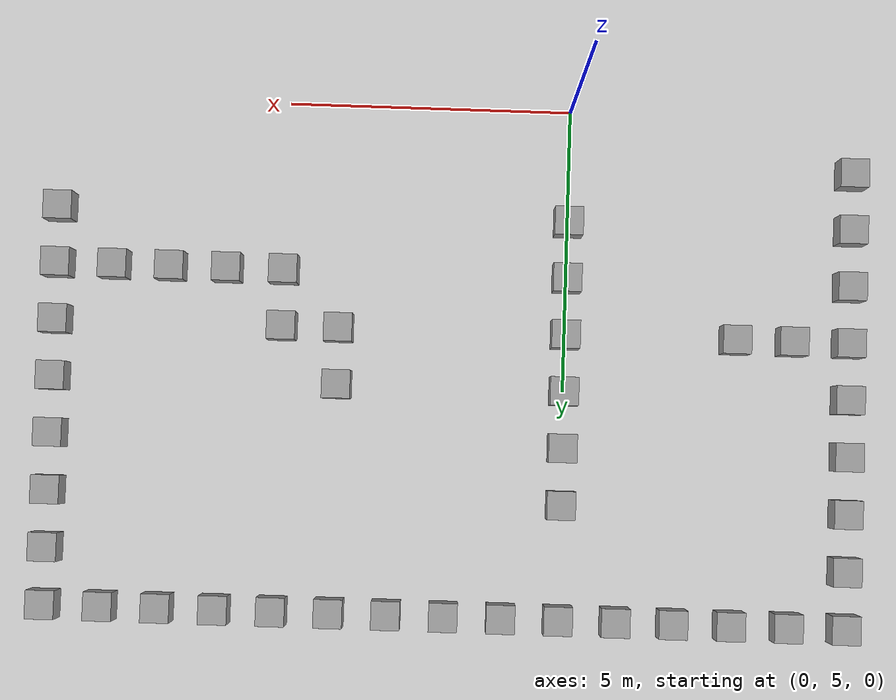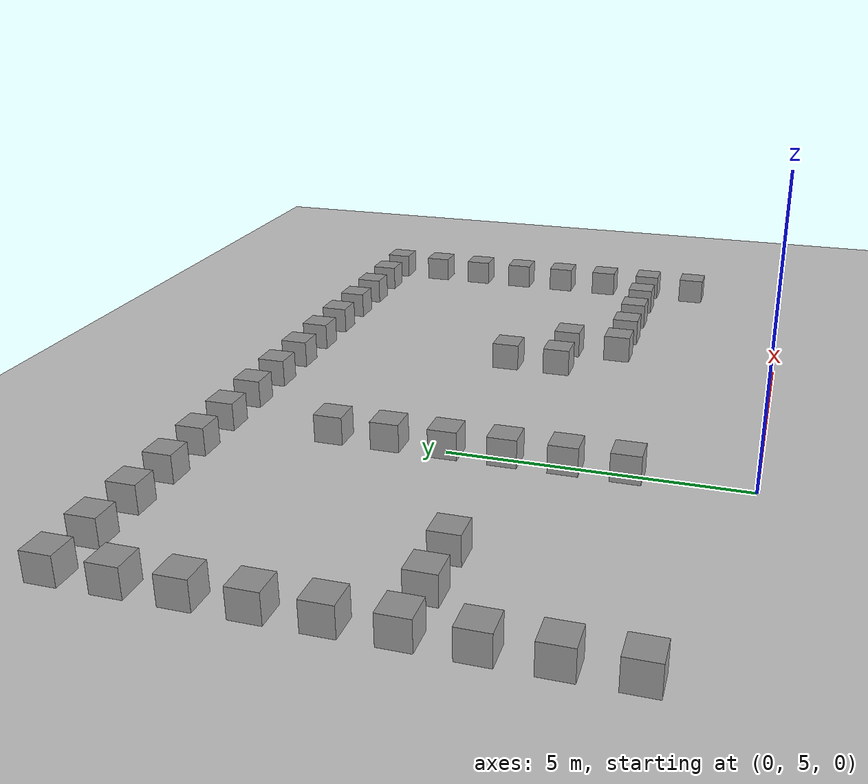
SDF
<sdf version="1.4">
 <world name="default">
  <model name="ground_plane">
   <static>1</static>
   <link name="link">
    <collision name="collision">
     <geometry><plane><normal>0 0 1</normal><size>100 100</size></plane></geometry>
     <surface><friction><ode><mu>100</mu><mu2>50</mu2></ode></friction></surface>
    </collision>
    <visual name="visual">
     <cast_shadows>0</cast_shadows>
     <geometry><plane><normal>0 0 1</normal><size>100 100</size></plane></geometry>
     <material>
      <script><uri>file://media/materials/scripts/gazebo.material</uri><name>Gazebo/Grey</name></script>
     </material>
    </visual>
    <velocity_decay><linear>0</linear><angular>0</angular></velocity_decay>
   </link>
  </model>
  <model name="unit_box_38">
   <pose>9 7 0.25 0 -0 0</pose>
   <static>true</static>
   <link name="link">
    <inertial>
     <mass>1</mass>
     <inertia><ixx>1</ixx><ixy>0</ixy><ixz>0</ixz><iyy>1</iyy><iyz>0</iyz><izz>1</izz></inertia>
    </inertial>
    <collision name="collision"><geometry><box><size>0.5 0.5 0.5</size></box></geometry></collision>
    <visual name="visual">
     <geometry><box><size>0.5 0.5 0.5</size></box></geometry>
     <material>
      <script><uri>file://media/materials/scripts/gazebo.material</uri><name>Gazebo/Grey</name></script>
     </material>
    </visual>
    <velocity_decay><linear>0</linear><angular>0</angular></velocity_decay>
   </link>
   <static>0</static>
  </model>
  <model name="unit_box_39">
   <pose>9 8 0.25 0 -0 0</pose>
   <static>true</static>
   <link name="link">
    <inertial>
     <mass>1</mass>
     <inertia><ixx>1</ixx><ixy>0</ixy><ixz>0</ixz><iyy>1</iyy><iyz>0</iyz><izz>1</izz></inertia>
    </inertial>
    <collision name="collision"><geometry><box><size>0.5 0.5 0.5</size></box></geometry></collision>
    <visual name="visual">
     <geometry><box><size>0.5 0.5 0.5</size></box></geometry>
     <material>
      <script><uri>file://media/materials/scripts/gazebo.material</uri><name>Gazebo/Grey</name></script>
     </material>
    </visual>
    <velocity_decay><linear>0</linear><angular>0</angular></velocity_decay>
   </link>
   <static>0</static>
  </model>
  <model name="unit_box_51">
   <pose>8 8 0.25 0 -0 0</pose>
   <static>true</static>
   <link name="link">
    <inertial>
     <mass>1</mass>
     <inertia><ixx>1</ixx><ixy>0</ixy><ixz>0</ixz><iyy>1</iyy><iyz>0</iyz><izz>1</izz></inertia>
    </inertial>
    <collision name="collision"><geometry><box><size>0.5 0.5 0.5</size></box></geometry></collision>
    <visual name="visual">
     <geometry><box><size>0.5 0.5 0.5</size></box></geometry>
     <material>
      <script><uri>file://media/materials/scripts/gazebo.material</uri><name>Gazebo/Grey</name></script>
     </material>
    </visual>
    <velocity_decay><linear>0</linear><angular>0</angular></velocity_decay>
   </link>
   <static>0</static>
  </model>
  <model name="unit_box_52">
   <pose>7 8 0.25 0 -0 0</pose>
   <static>true</static>
   <link name="link">
    <inertial>
     <mass>1</mass>
     <inertia><ixx>1</ixx><ixy>0</ixy><ixz>0</ixz><iyy>1</iyy><iyz>0</iyz><izz>1</izz></inertia>
    </inertial>
    <collision name="collision"><geometry><box><size>0.5 0.5 0.5</size></box></geometry></collision>
    <visual name="visual">
     <geometry><box><size>0.5 0.5 0.5</size></box></geometry>
     <material>
      <script><uri>file://media/materials/scripts/gazebo.material</uri><name>Gazebo/Grey</name></script>
     </material>
    </visual>
    <velocity_decay><linear>0</linear><angular>0</angular></velocity_decay>
   </link>
   <static>0</static>
  </model>
  <model name="unit_box_53">
   <pose>6 8 0.25 0 -0 0</pose>
   <static>true</static>
   <link name="link">
    <inertial>
     <mass>1</mass>
     <inertia><ixx>1</ixx><ixy>0</ixy><ixz>0</ixz><iyy>1</iyy><iyz>0</iyz><izz>1</izz></inertia>
    </inertial>
    <collision name="collision"><geometry><box><size>0.5 0.5 0.5</size></box></geometry></collision>
    <visual name="visual">
     <geometry><box><size>0.5 0.5 0.5</size></box></geometry>
     <material>
      <script><uri>file://media/materials/scripts/gazebo.material</uri><name>Gazebo/Grey</name></script>
     </material>
    </visual>
    <velocity_decay><linear>0</linear><angular>0</angular></velocity_decay>
   </link>
   <static>0</static>
  </model>
  <model name="unit_box_54">
   <pose>5 8 0.25 0 -0 0</pose>
   <static>true</static>
   <link name="link">
    <inertial>
     <mass>1</mass>
     <inertia><ixx>1</ixx><ixy>0</ixy><ixz>0</ixz><iyy>1</iyy><iyz>0</iyz><izz>1</izz></inertia>
    </inertial>
    <collision name="collision"><geometry><box><size>0.5 0.5 0.5</size></box></geometry></collision>
    <visual name="visual">
     <geometry><box><size>0.5 0.5 0.5</size></box></geometry>
     <material>
      <script><uri>file://media/materials/scripts/gazebo.material</uri><name>Gazebo/Grey</name></script>
     </material>
    </visual>
    <velocity_decay><linear>0</linear><angular>0</angular></velocity_decay>
   </link>
   <static>0</static>
  </model>
  <model name="unit_box_55">
   <pose>9 9 0.25 0 -0 0</pose>
   <static>true</static>
   <link name="link">
    <inertial>
     <mass>1</mass>
     <inertia><ixx>1</ixx><ixy>0</ixy><ixz>0</ixz><iyy>1</iyy><iyz>0</iyz><izz>1</izz></inertia>
    </inertial>
    <collision name="collision"><geometry><box><size>0.5 0.5 0.5</size></box></geometry></collision>
    <visual name="visual">
     <geometry><box><size>0.5 0.5 0.5</size></box></geometry>
     <material>
      <script><uri>file://media/materials/scripts/gazebo.material</uri><name>Gazebo/Grey</name></script>
     </material>
    </visual>
    <velocity_decay><linear>0</linear><angular>0</angular></velocity_decay>
   </link>
   <static>0</static>
  </model>
  <model name="unit_box_56">
   <pose>9 10 0.25 0 -0 0</pose>
   <static>true</static>
   <link name="link">
    <inertial>
     <mass>1</mass>
     <inertia><ixx>1</ixx><ixy>0</ixy><ixz>0</ixz><iyy>1</iyy><iyz>0</iyz><izz>1</izz></inertia>
    </inertial>
    <collision name="collision"><geometry><box><size>0.5 0.5 0.5</size></box></geometry></collision>
    <visual name="visual">
     <geometry><box><size>0.5 0.5 0.5</size></box></geometry>
     <material>
      <script><uri>file://media/materials/scripts/gazebo.material</uri><name>Gazebo/Grey</name></script>
     </material>
    </visual>
    <velocity_decay><linear>0</linear><angular>0</angular></velocity_decay>
   </link>
   <static>0</static>
  </model>
  <model name="unit_box__1">
   <pose>9 11 0.25 0 -0 0</pose>
   <static>true</static>
   <link name="link">
    <inertial>
     <mass>1</mass>
     <inertia><ixx>1</ixx><ixy>0</ixy><ixz>0</ixz><iyy>1</iyy><iyz>0</iyz><izz>1</izz></inertia>
    </inertial>
    <collision name="collision"><geometry><box><size>0.5 0.5 0.5</size></box></geometry></collision>
    <visual name="visual">
     <geometry><box><size>0.5 0.5 0.5</size></box></geometry>
     <material>
      <script><uri>file://media/materials/scripts/gazebo.material</uri><name>Gazebo/Grey</name></script>
     </material>
    </visual>
    <velocity_decay><linear>0</linear><angular>0</angular></velocity_decay>
   </link>
   <static>0</static>
  </model>
  <model name="unit_box__2">
   <pose>9 12 0.25 0 -0 0</pose>
   <static>true</static>
   <link name="link">
    <inertial>
     <mass>1</mass>
     <inertia><ixx>1</ixx><ixy>0</ixy><ixz>0</ixz><iyy>1</iyy><iyz>0</iyz><izz>1</izz></inertia>
    </inertial>
    <collision name="collision"><geometry><box><size>0.5 0.5 0.5</size></box></geometry></collision>
    <visual name="visual">
     <geometry><box><size>0.5 0.5 0.5</size></box></geometry>
     <material>
      <script><uri>file://media/materials/scripts/gazebo.material</uri><name>Gazebo/Grey</name></script>
     </material>
    </visual>
    <velocity_decay><linear>0</linear><angular>0</angular></velocity_decay>
   </link>
   <static>0</static>
  </model>
  <model name="unit_box__3">
   <pose>9 13 0.25 0 -0 0</pose>
   <static>true</static>
   <link name="link">
    <inertial>
     <mass>1</mass>
     <inertia><ixx>1</ixx><ixy>0</ixy><ixz>0</ixz><iyy>1</iyy><iyz>0</iyz><izz>1</izz></inertia>
    </inertial>
    <collision name="collision"><geometry><box><size>0.5 0.5 0.5</size></box></geometry></collision>
    <visual name="visual">
     <geometry><box><size>0.5 0.5 0.5</size></box></geometry>
     <material>
      <script><uri>file://media/materials/scripts/gazebo.material</uri><name>Gazebo/Grey</name></script>
     </material>
    </visual>
    <velocity_decay><linear>0</linear><angular>0</angular></velocity_decay>
   </link>
   <static>0</static>
  </model>
  <model name="unit_box_58">
   <pose>0 7 0.25 0 -0 0</pose>
   <static>true</static>
   <link name="link">
    <inertial>
     <mass>1</mass>
     <inertia><ixx>1</ixx><ixy>0</ixy><ixz>0</ixz><iyy>1</iyy><iyz>0</iyz><izz>1</izz></inertia>
    </inertial>
    <collision name="collision"><geometry><box><size>0.5 0.5 0.5</size></box></geometry></collision>
    <visual name="visual">
     <geometry><box><size>0.5 0.5 0.5</size></box></geometry>
     <material>
      <script><uri>file://media/materials/scripts/gazebo.material</uri><name>Gazebo/Grey</name></script>
     </material>
    </visual>
    <velocity_decay><linear>0</linear><angular>0</angular></velocity_decay>
   </link>
   <static>0</static>
  </model>
  <model name="unit_box_59">
   <pose>0 8 0.25 0 -0 0</pose>
   <static>true</static>
   <link name="link">
    <inertial>
     <mass>1</mass>
     <inertia><ixx>1</ixx><ixy>0</ixy><ixz>0</ixz><iyy>1</iyy><iyz>0</iyz><izz>1</izz></inertia>
    </inertial>
    <collision name="collision"><geometry><box><size>0.5 0.5 0.5</size></box></geometry></collision>
    <visual name="visual">
     <geometry><box><size>0.5 0.5 0.5</size></box></geometry>
     <material>
      <script><uri>file://media/materials/scripts/gazebo.material</uri><name>Gazebo/Grey</name></script>
     </material>
    </visual>
    <velocity_decay><linear>0</linear><angular>0</angular></velocity_decay>
   </link>
   <static>0</static>
  </model>
  <model name="unit_box_60">
   <pose>0 9 0.25 0 -0 0</pose>
   <static>true</static>
   <link name="link">
    <inertial>
     <mass>1</mass>
     <inertia><ixx>1</ixx><ixy>0</ixy><ixz>0</ixz><iyy>1</iyy><iyz>0</iyz><izz>1</izz></inertia>
    </inertial>
    <collision name="collision"><geometry><box><size>0.5 0.5 0.5</size></box></geometry></collision>
    <visual name="visual">
     <geometry><box><size>0.5 0.5 0.5</size></box></geometry>
     <material>
      <script><uri>file://media/materials/scripts/gazebo.material</uri><name>Gazebo/Grey</name></script>
     </material>
    </visual>
    <velocity_decay><linear>0</linear><angular>0</angular></velocity_decay>
   </link>
   <static>0</static>
  </model>
  <model name="unit_box_61">
   <pose>-5 6 0.25 0 -0 0</pose>
   <static>true</static>
   <link name="link">
    <inertial>
     <mass>1</mass>
     <inertia><ixx>1</ixx><ixy>0</ixy><ixz>0</ixz><iyy>1</iyy><iyz>0</iyz><izz>1</izz></inertia>
    </inertial>
    <collision name="collision"><geometry><box><size>0.5 0.5 0.5</size></box></geometry></collision>
    <visual name="visual">
     <geometry><box><size>0.5 0.5 0.5</size></box></geometry>
     <material>
      <script><uri>file://media/materials/scripts/gazebo.material</uri><name>Gazebo/Grey</name></script>
     </material>
    </visual>
    <velocity_decay><linear>0</linear><angular>0</angular></velocity_decay>
   </link>
   <static>0</static>
  </model>
  <model name="unit_box_62">
   <pose>0 10 0.25 0 -0 0</pose>
   <static>true</static>
   <link name="link">
    <inertial>
     <mass>1</mass>
     <inertia><ixx>1</ixx><ixy>0</ixy><ixz>0</ixz><iyy>1</iyy><iyz>0</iyz><izz>1</izz></inertia>
    </inertial>
    <collision name="collision"><geometry><box><size>0.5 0.5 0.5</size></box></geometry></collision>
    <visual name="visual">
     <geometry><box><size>0.5 0.5 0.5</size></box></geometry>
     <material>
      <script><uri>file://media/materials/scripts/gazebo.material</uri><name>Gazebo/Grey</name></script>
     </material>
    </visual>
    <velocity_decay><linear>0</linear><angular>0</angular></velocity_decay>
   </link>
   <static>0</static>
  </model>
  <model name="unit_box_63">
   <pose>0 11 0.25 0 -0 0</pose>
   <static>true</static>
   <link name="link">
    <inertial>
     <mass>1</mass>
     <inertia><ixx>1</ixx><ixy>0</ixy><ixz>0</ixz><iyy>1</iyy><iyz>0</iyz><izz>1</izz></inertia>
    </inertial>
    <collision name="collision"><geometry><box><size>0.5 0.5 0.5</size></box></geometry></collision>
    <visual name="visual">
     <geometry><box><size>0.5 0.5 0.5</size></box></geometry>
     <material>
      <script><uri>file://media/materials/scripts/gazebo.material</uri><name>Gazebo/Grey</name></script>
     </material>
    </visual>
    <velocity_decay><linear>0</linear><angular>0</angular></velocity_decay>
   </link>
   <static>0</static>
  </model>
  <model name="unit_box_64">
   <pose>0 12 0.25 0 -0 0</pose>
   <static>true</static>
   <link name="link">
    <inertial>
     <mass>1</mass>
     <inertia><ixx>1</ixx><ixy>0</ixy><ixz>0</ixz><iyy>1</iyy><iyz>0</iyz><izz>1</izz></inertia>
    </inertial>
    <collision name="collision"><geometry><box><size>0.5 0.5 0.5</size></box></geometry></collision>
    <visual name="visual">
     <geometry><box><size>0.5 0.5 0.5</size></box></geometry>
     <material>
      <script><uri>file://media/materials/scripts/gazebo.material</uri><name>Gazebo/Grey</name></script>
     </material>
    </visual>
    <velocity_decay><linear>0</linear><angular>0</angular></velocity_decay>
   </link>
   <static>0</static>
  </model>
  <model name="unit_box_65232">
   <pose>-4 14 0.25 0 -0 0</pose>
   <static>true</static>
   <link name="link">
    <inertial>
     <mass>1</mass>
     <inertia><ixx>1</ixx><ixy>0</ixy><ixz>0</ixz><iyy>1</iyy><iyz>0</iyz><izz>1</izz></inertia>
    </inertial>
    <collision name="collision"><geometry><box><size>0.5 0.5 0.5</size></box></geometry></collision>
    <visual name="visual">
     <geometry><box><size>0.5 0.5 0.5</size></box></geometry>
     <material>
      <script><uri>file://media/materials/scripts/gazebo.material</uri><name>Gazebo/Grey</name></script>
     </material>
    </visual>
    <velocity_decay><linear>0</linear><angular>0</angular></velocity_decay>
   </link>
   <static>0</static>
  </model>
  <model name="unit_box_6533">
   <pose>-3 14 0.25 0 -0 0</pose>
   <static>true</static>
   <link name="link">
    <inertial>
     <mass>1</mass>
     <inertia><ixx>1</ixx><ixy>0</ixy><ixz>0</ixz><iyy>1</iyy><iyz>0</iyz><izz>1</izz></inertia>
    </inertial>
    <collision name="collision"><geometry><box><size>0.5 0.5 0.5</size></box></geometry></collision>
    <visual name="visual">
     <geometry><box><size>0.5 0.5 0.5</size></box></geometry>
     <material>
      <script><uri>file://media/materials/scripts/gazebo.material</uri><name>Gazebo/Grey</name></script>
     </material>
    </visual>
    <velocity_decay><linear>0</linear><angular>0</angular></velocity_decay>
   </link>
   <static>0</static>
  </model>
  <model name="unit_box_6588">
   <pose>-2 14 0.25 0 -0 0</pose>
   <static>true</static>
   <link name="link">
    <inertial>
     <mass>1</mass>
     <inertia><ixx>1</ixx><ixy>0</ixy><ixz>0</ixz><iyy>1</iyy><iyz>0</iyz><izz>1</izz></inertia>
    </inertial>
    <collision name="collision"><geometry><box><size>0.5 0.5 0.5</size></box></geometry></collision>
    <visual name="visual">
     <geometry><box><size>0.5 0.5 0.5</size></box></geometry>
     <material>
      <script><uri>file://media/materials/scripts/gazebo.material</uri><name>Gazebo/Grey</name></script>
     </material>
    </visual>
    <velocity_decay><linear>0</linear><angular>0</angular></velocity_decay>
   </link>
   <static>0</static>
  </model>
  <model name="unit_box_6599">
   <pose>-1 14 0.25 0 -0 0</pose>
   <static>true</static>
   <link name="link">
    <inertial>
     <mass>1</mass>
     <inertia><ixx>1</ixx><ixy>0</ixy><ixz>0</ixz><iyy>1</iyy><iyz>0</iyz><izz>1</izz></inertia>
    </inertial>
    <collision name="collision"><geometry><box><size>0.5 0.5 0.5</size></box></geometry></collision>
    <visual name="visual">
     <geometry><box><size>0.5 0.5 0.5</size></box></geometry>
     <material>
      <script><uri>file://media/materials/scripts/gazebo.material</uri><name>Gazebo/Grey</name></script>
     </material>
    </visual>
    <velocity_decay><linear>0</linear><angular>0</angular></velocity_decay>
   </link>
   <static>0</static>
  </model>
  <model name="unit_box_650">
   <pose>0 14 0.25 0 -0 0</pose>
   <static>true</static>
   <link name="link">
    <inertial>
     <mass>1</mass>
     <inertia><ixx>1</ixx><ixy>0</ixy><ixz>0</ixz><iyy>1</iyy><iyz>0</iyz><izz>1</izz></inertia>
    </inertial>
    <collision name="collision"><geometry><box><size>0.5 0.5 0.5</size></box></geometry></collision>
    <visual name="visual">
     <geometry><box><size>0.5 0.5 0.5</size></box></geometry>
     <material>
      <script><uri>file://media/materials/scripts/gazebo.material</uri><name>Gazebo/Grey</name></script>
     </material>
    </visual>
    <velocity_decay><linear>0</linear><angular>0</angular></velocity_decay>
   </link>
   <static>0</static>
  </model>
  <model name="unit_box_651">
   <pose>1 14 0.25 0 -0 0</pose>
   <static>true</static>
   <link name="link">
    <inertial>
     <mass>1</mass>
     <inertia><ixx>1</ixx><ixy>0</ixy><ixz>0</ixz><iyy>1</iyy><iyz>0</iyz><izz>1</izz></inertia>
    </inertial>
    <collision name="collision"><geometry><box><size>0.5 0.5 0.5</size></box></geometry></collision>
    <visual name="visual">
     <geometry><box><size>0.5 0.5 0.5</size></box></geometry>
     <material>
      <script><uri>file://media/materials/scripts/gazebo.material</uri><name>Gazebo/Grey</name></script>
     </material>
    </visual>
    <velocity_decay><linear>0</linear><angular>0</angular></velocity_decay>
   </link>
   <static>0</static>
  </model>
  <model name="unit_box_652">
   <pose>2 14 0.25 0 -0 0</pose>
   <static>true</static>
   <link name="link">
    <inertial>
     <mass>1</mass>
     <inertia><ixx>1</ixx><ixy>0</ixy><ixz>0</ixz><iyy>1</iyy><iyz>0</iyz><izz>1</izz></inertia>
    </inertial>
    <collision name="collision"><geometry><box><size>0.5 0.5 0.5</size></box></geometry></collision>
    <visual name="visual">
     <geometry><box><size>0.5 0.5 0.5</size></box></geometry>
     <material>
      <script><uri>file://media/materials/scripts/gazebo.material</uri><name>Gazebo/Grey</name></script>
     </material>
    </visual>
    <velocity_decay><linear>0</linear><angular>0</angular></velocity_decay>
   </link>
   <static>0</static>
  </model>
  <model name="unit_box_653">
   <pose>3 14 0.25 0 -0 0</pose>
   <static>true</static>
   <link name="link">
    <inertial>
     <mass>1</mass>
     <inertia><ixx>1</ixx><ixy>0</ixy><ixz>0</ixz><iyy>1</iyy><iyz>0</iyz><izz>1</izz></inertia>
    </inertial>
    <collision name="collision"><geometry><box><size>0.5 0.5 0.5</size></box></geometry></collision>
    <visual name="visual">
     <geometry><box><size>0.5 0.5 0.5</size></box></geometry>
     <material>
      <script><uri>file://media/materials/scripts/gazebo.material</uri><name>Gazebo/Grey</name></script>
     </material>
    </visual>
    <velocity_decay><linear>0</linear><angular>0</angular></velocity_decay>
   </link>
   <static>0</static>
  </model>
  <model name="unit_box_65">
   <pose>4 14 0.25 0 -0 0</pose>
   <static>true</static>
   <link name="link">
    <inertial>
     <mass>1</mass>
     <inertia><ixx>1</ixx><ixy>0</ixy><ixz>0</ixz><iyy>1</iyy><iyz>0</iyz><izz>1</izz></inertia>
    </inertial>
    <collision name="collision"><geometry><box><size>0.5 0.5 0.5</size></box></geometry></collision>
    <visual name="visual">
     <geometry><box><size>0.5 0.5 0.5</size></box></geometry>
     <material>
      <script><uri>file://media/materials/scripts/gazebo.material</uri><name>Gazebo/Grey</name></script>
     </material>
    </visual>
    <velocity_decay><linear>0</linear><angular>0</angular></velocity_decay>
   </link>
   <static>0</static>
  </model>
  <model name="unit_box_66">
   <pose>5 14 0.25 0 -0 0</pose>
   <static>true</static>
   <link name="link">
    <inertial>
     <mass>1</mass>
     <inertia><ixx>1</ixx><ixy>0</ixy><ixz>0</ixz><iyy>1</iyy><iyz>0</iyz><izz>1</izz></inertia>
    </inertial>
    <collision name="collision"><geometry><box><size>0.5 0.5 0.5</size></box></geometry></collision>
    <visual name="visual">
     <geometry><box><size>0.5 0.5 0.5</size></box></geometry>
     <material>
      <script><uri>file://media/materials/scripts/gazebo.material</uri><name>Gazebo/Grey</name></script>
     </material>
    </visual>
    <velocity_decay><linear>0</linear><angular>0</angular></velocity_decay>
   </link>
   <static>0</static>
  </model>
  <model name="unit_box_67">
   <pose>-5 7 0.25 0 -0 0</pose>
   <static>true</static>
   <link name="link">
    <inertial>
     <mass>1</mass>
     <inertia><ixx>1</ixx><ixy>0</ixy><ixz>0</ixz><iyy>1</iyy><iyz>0</iyz><izz>1</izz></inertia>
    </inertial>
    <collision name="collision"><geometry><box><size>0.5 0.5 0.5</size></box></geometry></collision>
    <visual name="visual">
     <geometry><box><size>0.5 0.5 0.5</size></box></geometry>
     <material>
      <script><uri>file://media/materials/scripts/gazebo.material</uri><name>Gazebo/Grey</name></script>
     </material>
    </visual>
    <velocity_decay><linear>0</linear><angular>0</angular></velocity_decay>
   </link>
   <static>0</static>
  </model>
  <model name="unit_box_68">
   <pose>-5 8 0.25 0 -0 0</pose>
   <static>true</static>
   <link name="link">
    <inertial>
     <mass>1</mass>
     <inertia><ixx>1</ixx><ixy>0</ixy><ixz>0</ixz><iyy>1</iyy><iyz>0</iyz><izz>1</izz></inertia>
    </inertial>
    <collision name="collision"><geometry><box><size>0.5 0.5 0.5</size></box></geometry></collision>
    <visual name="visual">
     <geometry><box><size>0.5 0.5 0.5</size></box></geometry>
     <material>
      <script><uri>file://media/materials/scripts/gazebo.material</uri><name>Gazebo/Grey</name></script>
     </material>
    </visual>
    <velocity_decay><linear>0</linear><angular>0</angular></velocity_decay>
   </link>
   <static>0</static>
  </model>
  <model name="unit_box_69">
   <pose>-5 9 0.25 0 -0 0</pose>
   <static>true</static>
   <link name="link">
    <inertial>
     <mass>1</mass>
     <inertia><ixx>1</ixx><ixy>0</ixy><ixz>0</ixz><iyy>1</iyy><iyz>0</iyz><izz>1</izz></inertia>
    </inertial>
    <collision name="collision"><geometry><box><size>0.5 0.5 0.5</size></box></geometry></collision>
    <visual name="visual">
     <geometry><box><size>0.5 0.5 0.5</size></box></geometry>
     <material>
      <script><uri>file://media/materials/scripts/gazebo.material</uri><name>Gazebo/Grey</name></script>
     </material>
    </visual>
    <velocity_decay><linear>0</linear><angular>0</angular></velocity_decay>
   </link>
   <static>0</static>
  </model>
  <model name="unit_box_70">
   <pose>-4 9 0.25 0 -0 0</pose>
   <static>true</static>
   <link name="link">
    <inertial>
     <mass>1</mass>
     <inertia><ixx>1</ixx><ixy>0</ixy><ixz>0</ixz><iyy>1</iyy><iyz>0</iyz><izz>1</izz></inertia>
    </inertial>
    <collision name="collision"><geometry><box><size>0.5 0.5 0.5</size></box></geometry></collision>
    <visual name="visual">
     <geometry><box><size>0.5 0.5 0.5</size></box></geometry>
     <material>
      <script><uri>file://media/materials/scripts/gazebo.material</uri><name>Gazebo/Grey</name></script>
     </material>
    </visual>
    <velocity_decay><linear>0</linear><angular>0</angular></velocity_decay>
   </link>
   <static>0</static>
  </model>
  <model name="unit_box_71">
   <pose>-3 9 0.25 0 -0 0</pose>
   <static>true</static>
   <link name="link">
    <inertial>
     <mass>1</mass>
     <inertia><ixx>1</ixx><ixy>0</ixy><ixz>0</ixz><iyy>1</iyy><iyz>0</iyz><izz>1</izz></inertia>
    </inertial>
    <collision name="collision"><geometry><box><size>0.5 0.5 0.5</size></box></geometry></collision>
    <visual name="visual">
     <geometry><box><size>0.5 0.5 0.5</size></box></geometry>
     <material>
      <script><uri>file://media/materials/scripts/gazebo.material</uri><name>Gazebo/Grey</name></script>
     </material>
    </visual>
    <velocity_decay><linear>0</linear><angular>0</angular></velocity_decay>
   </link>
   <static>0</static>
  </model>
  <model name="unit_box_72">
   <pose>-5 10 0.25 0 -0 0</pose>
   <static>true</static>
   <link name="link">
    <inertial>
     <mass>1</mass>
     <inertia><ixx>1</ixx><ixy>0</ixy><ixz>0</ixz><iyy>1</iyy><iyz>0</iyz><izz>1</izz></inertia>
    </inertial>
    <collision name="collision"><geometry><box><size>0.5 0.5 0.5</size></box></geometry></collision>
    <visual name="visual">
     <geometry><box><size>0.5 0.5 0.5</size></box></geometry>
     <material>
      <script><uri>file://media/materials/scripts/gazebo.material</uri><name>Gazebo/Grey</name></script>
     </material>
    </visual>
    <velocity_decay><linear>0</linear><angular>0</angular></velocity_decay>
   </link>
   <static>0</static>
  </model>
  <model name="unit_box_73">
   <pose>-5 11 0.25 0 -0 0</pose>
   <static>true</static>
   <link name="link">
    <inertial>
     <mass>1</mass>
     <inertia><ixx>1</ixx><ixy>0</ixy><ixz>0</ixz><iyy>1</iyy><iyz>0</iyz><izz>1</izz></inertia>
    </inertial>
    <collision name="collision"><geometry><box><size>0.5 0.5 0.5</size></box></geometry></collision>
    <visual name="visual">
     <geometry><box><size>0.5 0.5 0.5</size></box></geometry>
     <material>
      <script><uri>file://media/materials/scripts/gazebo.material</uri><name>Gazebo/Grey</name></script>
     </material>
    </visual>
    <velocity_decay><linear>0</linear><angular>0</angular></velocity_decay>
   </link>
   <static>0</static>
  </model>
  <model name="unit_box_74">
   <pose>-5 12 0.25 0 -0 0</pose>
   <static>true</static>
   <link name="link">
    <inertial>
     <mass>1</mass>
     <inertia><ixx>1</ixx><ixy>0</ixy><ixz>0</ixz><iyy>1</iyy><iyz>0</iyz><izz>1</izz></inertia>
    </inertial>
    <collision name="collision"><geometry><box><size>0.5 0.5 0.5</size></box></geometry></collision>
    <visual name="visual">
     <geometry><box><size>0.5 0.5 0.5</size></box></geometry>
     <material>
      <script><uri>file://media/materials/scripts/gazebo.material</uri><name>Gazebo/Grey</name></script>
     </material>
    </visual>
    <velocity_decay><linear>0</linear><angular>0</angular></velocity_decay>
   </link>
   <static>0</static>
  </model>
  <model name="unit_box_75">
   <pose>-5 13 0.25 0 -0 0</pose>
   <static>true</static>
   <link name="link">
    <inertial>
     <mass>1</mass>
     <inertia><ixx>1</ixx><ixy>0</ixy><ixz>0</ixz><iyy>1</iyy><iyz>0</iyz><izz>1</izz></inertia>
    </inertial>
    <collision name="collision"><geometry><box><size>0.5 0.5 0.5</size></box></geometry></collision>
    <visual name="visual">
     <geometry><box><size>0.5 0.5 0.5</size></box></geometry>
     <material>
      <script><uri>file://media/materials/scripts/gazebo.material</uri><name>Gazebo/Grey</name></script>
     </material>
    </visual>
    <velocity_decay><linear>0</linear><angular>0</angular></velocity_decay>
   </link>
   <static>0</static>
  </model>
  <model name="unit_box_76">
   <pose>-5 14 0.25 0 -0 0</pose>
   <static>true</static>
   <link name="link">
    <inertial>
     <mass>1</mass>
     <inertia><ixx>1</ixx><ixy>0</ixy><ixz>0</ixz><iyy>1</iyy><iyz>0</iyz><izz>1</izz></inertia>
    </inertial>
    <collision name="collision"><geometry><box><size>0.5 0.5 0.5</size></box></geometry></collision>
    <visual name="visual">
     <geometry><box><size>0.5 0.5 0.5</size></box></geometry>
     <material>
      <script><uri>file://media/materials/scripts/gazebo.material</uri><name>Gazebo/Grey</name></script>
     </material>
    </visual>
    <velocity_decay><linear>0</linear><angular>0</angular></velocity_decay>
   </link>
   <static>0</static>
  </model>
  <model name="unit_box_86">
   <pose>6 14 0.25 0 -0 0</pose>
   <static>true</static>
   <link name="link">
    <inertial>
     <mass>1</mass>
     <inertia><ixx>1</ixx><ixy>0</ixy><ixz>0</ixz><iyy>1</iyy><iyz>0</iyz><izz>1</izz></inertia>
    </inertial>
    <collision name="collision"><geometry><box><size>0.5 0.5 0.5</size></box></geometry></collision>
    <visual name="visual">
     <geometry><box><size>0.5 0.5 0.5</size></box></geometry>
     <material>
      <script><uri>file://media/materials/scripts/gazebo.material</uri><name>Gazebo/Grey</name></script>
     </material>
    </visual>
    <velocity_decay><linear>0</linear><angular>0</angular></velocity_decay>
   </link>
   <static>0</static>
  </model>
  <model name="unit_box_87">
   <pose>7 14 0.25 0 -0 0</pose>
   <static>true</static>
   <link name="link">
    <inertial>
     <mass>1</mass>
     <inertia><ixx>1</ixx><ixy>0</ixy><ixz>0</ixz><iyy>1</iyy><iyz>0</iyz><izz>1</izz></inertia>
    </inertial>
    <collision name="collision"><geometry><box><size>0.5 0.5 0.5</size></box></geometry></collision>
    <visual name="visual">
     <geometry><box><size>0.5 0.5 0.5</size></box></geometry>
     <material>
      <script><uri>file://media/materials/scripts/gazebo.material</uri><name>Gazebo/Grey</name></script>
     </material>
    </visual>
    <velocity_decay><linear>0</linear><angular>0</angular></velocity_decay>
   </link>
   <static>0</static>
  </model>
  <model name="unit_box_88">
   <pose>8 14 0.25 0 -0 0</pose>
   <static>true</static>
   <link name="link">
    <inertial>
     <mass>1</mass>
     <inertia><ixx>1</ixx><ixy>0</ixy><ixz>0</ixz><iyy>1</iyy><iyz>0</iyz><izz>1</izz></inertia>
    </inertial>
    <collision name="collision"><geometry><box><size>0.5 0.5 0.5</size></box></geometry></collision>
    <visual name="visual">
     <geometry><box><size>0.5 0.5 0.5</size></box></geometry>
     <material>
      <script><uri>file://media/materials/scripts/gazebo.material</uri><name>Gazebo/Grey</name></script>
     </material>
    </visual>
    <velocity_decay><linear>0</linear><angular>0</angular></velocity_decay>
   </link>
   <static>0</static>
  </model>
  <model name="unit_box_89">
   <pose>9 14 0.25 0 -0 0</pose>
   <static>true</static>
   <link name="link">
    <inertial>
     <mass>1</mass>
     <inertia><ixx>1</ixx><ixy>0</ixy><ixz>0</ixz><iyy>1</iyy><iyz>0</iyz><izz>1</izz></inertia>
    </inertial>
    <collision name="collision"><geometry><box><size>0.5 0.5 0.5</size></box></geometry></collision>
    <visual name="visual">
     <geometry><box><size>0.5 0.5 0.5</size></box></geometry>
     <material>
      <script><uri>file://media/materials/scripts/gazebo.material</uri><name>Gazebo/Grey</name></script>
     </material>
    </visual>
    <velocity_decay><linear>0</linear><angular>0</angular></velocity_decay>
   </link>
   <static>0</static>
  </model>
  <model name="unit_box_90">
   <pose>5 9 0.25 0 -0 0</pose>
   <static>true</static>
   <link name="link">
    <inertial>
     <mass>1</mass>
     <inertia><ixx>1</ixx><ixy>0</ixy><ixz>0</ixz><iyy>1</iyy><iyz>0</iyz><izz>1</izz></inertia>
    </inertial>
    <collision name="collision"><geometry><box><size>0.5 0.5 0.5</size></box></geometry></collision>
    <visual name="visual">
     <geometry><box><size>0.5 0.5 0.5</size></box></geometry>
     <material>
      <script><uri>file://media/materials/scripts/gazebo.material</uri><name>Gazebo/Grey</name></script>
     </material>
    </visual>
    <velocity_decay><linear>0</linear><angular>0</angular></velocity_decay>
   </link>
   <static>0</static>
  </model>
  <model name="unit_box_91">
   <pose>4 9 0.25 0 -0 0</pose>
   <static>true</static>
   <link name="link">
    <inertial>
     <mass>1</mass>
     <inertia><ixx>1</ixx><ixy>0</ixy><ixz>0</ixz><iyy>1</iyy><iyz>0</iyz><izz>1</izz></inertia>
    </inertial>
    <collision name="collision"><geometry><box><size>0.5 0.5 0.5</size></box></geometry></collision>
    <visual name="visual">
     <geometry><box><size>0.5 0.5 0.5</size></box></geometry>
     <material>
      <script><uri>file://media/materials/scripts/gazebo.material</uri><name>Gazebo/Grey</name></script>
     </material>
    </visual>
    <velocity_decay><linear>0</linear><angular>0</angular></velocity_decay>
   </link>
   <static>0</static>
  </model>
  <model name="unit_box_92">
   <pose>4 10 0.25 0 -0 0</pose>
   <static>true</static>
   <link name="link">
    <inertial>
     <mass>1</mass>
     <inertia><ixx>1</ixx><ixy>0</ixy><ixz>0</ixz><iyy>1</iyy><iyz>0</iyz><izz>1</izz></inertia>
    </inertial>
    <collision name="collision"><geometry><box><size>0.5 0.5 0.5</size></box></geometry></collision>
    <visual name="visual">
     <geometry><box><size>0.5 0.5 0.5</size></box></geometry>
     <material>
      <script><uri>file://media/materials/scripts/gazebo.material</uri><name>Gazebo/Grey</name></script>
     </material>
    </visual>
    <velocity_decay><linear>0</linear><angular>0</angular></velocity_decay>
   </link>
   <static>0</static>
  </model>
 </world>
</sdf>
